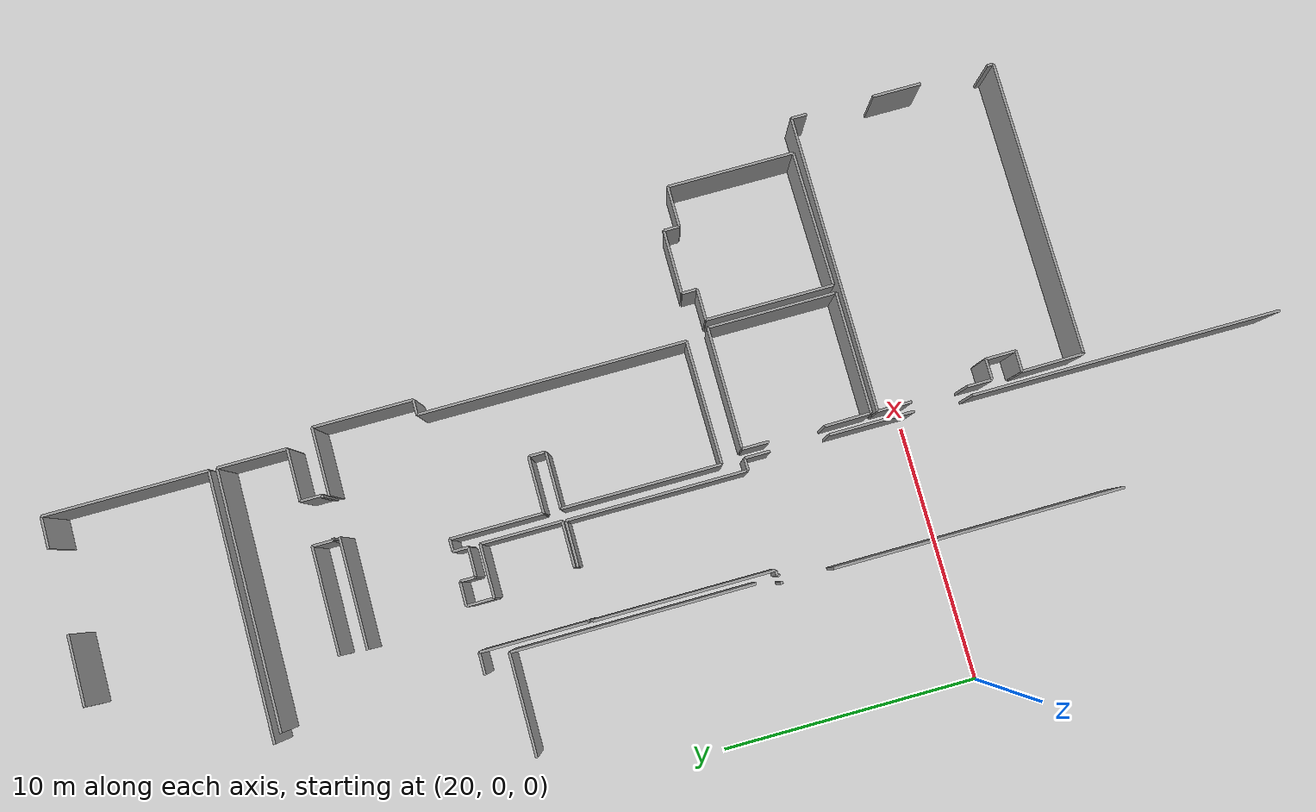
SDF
<sdf version="1.6">
 <world name="default">
  <model name="ground_plane">
   <static>1</static>
   <link name="link">
    <collision name="collision">
     <geometry><plane><normal>0 0 1</normal><size>100 100</size></plane></geometry>
     <surface><friction><ode><mu>100</mu><mu2>50</mu2></ode></friction></surface>
    </collision>
    <visual name="visual">
     <cast_shadows>0</cast_shadows>
     <geometry><plane><normal>0 0 1</normal><size>100 100</size></plane></geometry>
     <material>
      <script><uri>file://media/materials/scripts/gazebo.material</uri><name>Gazebo/Grey</name></script>
     </material>
    </visual>
   </link>
  </model>
  <model name="50052749">
   <static>1</static>
   <link name="Wall_98">
    <collision name="Wall_98_Collision">
     <geometry><box><size>2.7464027956 0.1 2.5</size></box></geometry>
     <pose>1.3732013978 0 1.25 0 0 0</pose>
    </collision>
    <visual name="Wall_98_Visual">
     <pose>1.3732013978 0 1.25 0 0 0</pose>
     <geometry><box><size>2.7464027956 0.1 2.5</size></box></geometry>
     <material>
      <script><uri>file://media/materials/scripts/gazebo.material</uri><name>Gazebo/Grey</name></script>
      <ambient>1 1 1 1</ambient>
     </material>
    </visual>
    <pose>70.475535967 -0.0281487267139 0 0 0 0.0</pose>
   </link>
   <link name="Wall_99">
    <collision name="Wall_99_Collision">
     <geometry><box><size>1.25528105616 0.1 2.5</size></box></geometry>
     <pose>0.62764052808 0 1.25 0 0 0</pose>
    </collision>
    <visual name="Wall_99_Visual">
     <pose>0.62764052808 0 1.25 0 0 0</pose>
     <geometry><box><size>1.25528105616 0.1 2.5</size></box></geometry>
     <material>
      <script><uri>file://media/materials/scripts/gazebo.material</uri><name>Gazebo/Grey</name></script>
      <ambient>1 1 1 1</ambient>
     </material>
    </visual>
    <pose>76.4780617446 -0.0281487267139 0 0 0 0.0</pose>
   </link>
   <link name="Wall_100">
    <collision name="Wall_100_Collision">
     <geometry><box><size>6.40586406447 0.1 2.5</size></box></geometry>
     <pose>3.20293203224 0 1.25 0 0 0</pose>
    </collision>
    <visual name="Wall_100_Visual">
     <pose>3.20293203224 0 1.25 0 0 0</pose>
     <geometry><box><size>6.40586406447 0.1 2.5</size></box></geometry>
     <material>
      <script><uri>file://media/materials/scripts/gazebo.material</uri><name>Gazebo/Grey</name></script>
      <ambient>1 1 1 1</ambient>
     </material>
    </visual>
    <pose>77.7333428008 -0.0281487267139 0 0 0 -1.57079632679</pose>
   </link>
   <link name="Wall_101">
    <collision name="Wall_101_Collision">
     <geometry><box><size>10.4055191792 0.1 2.5</size></box></geometry>
     <pose>5.20275958959 0 1.25 0 0 0</pose>
    </collision>
    <visual name="Wall_101_Visual">
     <pose>5.20275958959 0 1.25 0 0 0</pose>
     <geometry><box><size>10.4055191792 0.1 2.5</size></box></geometry>
     <material>
      <script><uri>file://media/materials/scripts/gazebo.material</uri><name>Gazebo/Grey</name></script>
      <ambient>1 1 1 1</ambient>
     </material>
    </visual>
    <pose>77.7333428008 -6.43401279119 0 0 0 3.14159265359</pose>
   </link>
   <link name="Wall_111">
    <collision name="Wall_111_Collision">
     <geometry><box><size>4.17869116029 0.1 2.5</size></box></geometry>
     <pose>2.08934558014 0 1.25 0 0 0</pose>
    </collision>
    <visual name="Wall_111_Visual">
     <pose>2.08934558014 0 1.25 0 0 0</pose>
     <geometry><box><size>4.17869116029 0.1 2.5</size></box></geometry>
     <material>
      <script><uri>file://media/materials/scripts/gazebo.material</uri><name>Gazebo/Grey</name></script>
      <ambient>1 1 1 1</ambient>
     </material>
    </visual>
    <pose>69.7929927422 -9.48650129078 0 0 0 0.0</pose>
   </link>
   <link name="Wall_112">
    <collision name="Wall_112_Collision">
     <geometry><box><size>0.815171910107 0.1 2.5</size></box></geometry>
     <pose>0.407585955053 0 1.25 0 0 0</pose>
    </collision>
    <visual name="Wall_112_Visual">
     <pose>0.407585955053 0 1.25 0 0 0</pose>
     <geometry><box><size>0.815171910107 0.1 2.5</size></box></geometry>
     <material>
      <script><uri>file://media/materials/scripts/gazebo.material</uri><name>Gazebo/Grey</name></script>
      <ambient>1 1 1 1</ambient>
     </material>
    </visual>
    <pose>73.9716839025 -9.48650129078 0 0 0 -1.57079632679</pose>
   </link>
   <link name="Wall_113">
    <collision name="Wall_113_Collision">
     <geometry><box><size>0.0910395755882 0.1 2.5</size></box></geometry>
     <pose>0.0455197877941 0 1.25 0 0 0</pose>
    </collision>
    <visual name="Wall_113_Visual">
     <pose>0.0455197877941 0 1.25 0 0 0</pose>
     <geometry><box><size>0.0910395755882 0.1 2.5</size></box></geometry>
     <material>
      <script><uri>file://media/materials/scripts/gazebo.material</uri><name>Gazebo/Grey</name></script>
      <ambient>1 1 1 1</ambient>
     </material>
    </visual>
    <pose>73.9716839025 -10.3016732009 0 0 0 0.0</pose>
   </link>
   <link name="Wall_114">
    <collision name="Wall_114_Collision">
     <geometry><box><size>0.0958578261068 0.1 2.5</size></box></geometry>
     <pose>0.0479289130534 0 1.25 0 0 0</pose>
    </collision>
    <visual name="Wall_114_Visual">
     <pose>0.0479289130534 0 1.25 0 0 0</pose>
     <geometry><box><size>0.0958578261068 0.1 2.5</size></box></geometry>
     <material>
      <script><uri>file://media/materials/scripts/gazebo.material</uri><name>Gazebo/Grey</name></script>
      <ambient>1 1 1 1</ambient>
     </material>
    </visual>
    <pose>75.617877231 -10.3016732009 0 0 0 0.0</pose>
   </link>
   <link name="Wall_115">
    <collision name="Wall_115_Collision">
     <geometry><box><size>0.842940248622 0.1 2.5</size></box></geometry>
     <pose>0.421470124311 0 1.25 0 0 0</pose>
    </collision>
    <visual name="Wall_115_Visual">
     <pose>0.421470124311 0 1.25 0 0 0</pose>
     <geometry><box><size>0.842940248622 0.1 2.5</size></box></geometry>
     <material>
      <script><uri>file://media/materials/scripts/gazebo.material</uri><name>Gazebo/Grey</name></script>
      <ambient>1 1 1 1</ambient>
     </material>
    </visual>
    <pose>75.7137350571 -10.3016732009 0 0 0 1.57079632679</pose>
   </link>
   <link name="Wall_116">
    <collision name="Wall_116_Collision">
     <geometry><box><size>2.03254094245 0.1 2.5</size></box></geometry>
     <pose>1.01627047122 0 1.25 0 0 0</pose>
    </collision>
    <visual name="Wall_116_Visual">
     <pose>1.01627047122 0 1.25 0 0 0</pose>
     <geometry><box><size>2.03254094245 0.1 2.5</size></box></geometry>
     <material>
      <script><uri>file://media/materials/scripts/gazebo.material</uri><name>Gazebo/Grey</name></script>
      <ambient>1 1 1 1</ambient>
     </material>
    </visual>
    <pose>75.7137350571 -9.45873295227 0 0 0 0.0</pose>
   </link>
   <link name="Wall_117">
    <collision name="Wall_117_Collision">
     <geometry><box><size>2.70798358752 0.1 2.5</size></box></geometry>
     <pose>1.35399179376 0 1.25 0 0 0</pose>
    </collision>
    <visual name="Wall_117_Visual">
     <pose>1.35399179376 0 1.25 0 0 0</pose>
     <geometry><box><size>2.70798358752 0.1 2.5</size></box></geometry>
     <material>
      <script><uri>file://media/materials/scripts/gazebo.material</uri><name>Gazebo/Grey</name></script>
      <ambient>1 1 1 1</ambient>
     </material>
    </visual>
    <pose>77.7462759995 -9.45873295227 0 0 0 1.57079632679</pose>
   </link>
   <link name="Wall_118">
    <collision name="Wall_118_Collision">
     <geometry><box><size>10.0944884286 0.1 2.5</size></box></geometry>
     <pose>5.0472442143 0 1.25 0 0 0</pose>
    </collision>
    <visual name="Wall_118_Visual">
     <pose>5.0472442143 0 1.25 0 0 0</pose>
     <geometry><box><size>10.0944884286 0.1 2.5</size></box></geometry>
     <material>
      <script><uri>file://media/materials/scripts/gazebo.material</uri><name>Gazebo/Grey</name></script>
      <ambient>1 1 1 1</ambient>
     </material>
    </visual>
    <pose>77.7462759995 -6.75074936475 0 0 0 3.14159265359</pose>
   </link>
   <link name="Wall_139">
    <collision name="Wall_139_Collision">
     <geometry><box><size>6.22708161102 0.1 2.5</size></box></geometry>
     <pose>3.11354080551 0 1.25 0 0 0</pose>
    </collision>
    <visual name="Wall_139_Visual">
     <pose>3.11354080551 0 1.25 0 0 0</pose>
     <geometry><box><size>6.22708161102 0.1 2.5</size></box></geometry>
     <material>
      <script><uri>file://media/materials/scripts/gazebo.material</uri><name>Gazebo/Grey</name></script>
      <ambient>1 1 1 1</ambient>
     </material>
    </visual>
    <pose>72.8639934675 -24.975147971 0 0 0 1.57079632679</pose>
   </link>
   <link name="Wall_140">
    <collision name="Wall_140_Collision">
     <geometry><box><size>2.19927776961 0.1 2.5</size></box></geometry>
     <pose>1.0996388848 0 1.25 0 0 0</pose>
    </collision>
    <visual name="Wall_140_Visual">
     <pose>1.0996388848 0 1.25 0 0 0</pose>
     <geometry><box><size>2.19927776961 0.1 2.5</size></box></geometry>
     <material>
      <script><uri>file://media/materials/scripts/gazebo.material</uri><name>Gazebo/Grey</name></script>
      <ambient>1 1 1 1</ambient>
     </material>
    </visual>
    <pose>72.8639934675 -18.74806636 0 0 0 0.0</pose>
   </link>
   <link name="Wall_141">
    <collision name="Wall_141_Collision">
     <geometry><box><size>0.661495077777 0.1 2.5</size></box></geometry>
     <pose>0.330747538888 0 1.25 0 0 0</pose>
    </collision>
    <visual name="Wall_141_Visual">
     <pose>0.330747538888 0 1.25 0 0 0</pose>
     <geometry><box><size>0.661495077777 0.1 2.5</size></box></geometry>
     <material>
      <script><uri>file://media/materials/scripts/gazebo.material</uri><name>Gazebo/Grey</name></script>
      <ambient>1 1 1 1</ambient>
     </material>
    </visual>
    <pose>75.0632712371 -18.74806636 0 0 0 1.57079632679</pose>
   </link>
   <link name="Wall_142">
    <collision name="Wall_142_Collision">
     <geometry><box><size>2.19420592696 0.1 2.5</size></box></geometry>
     <pose>1.09710296348 0 1.25 0 0 0</pose>
    </collision>
    <visual name="Wall_142_Visual">
     <pose>1.09710296348 0 1.25 0 0 0</pose>
     <geometry><box><size>2.19420592696 0.1 2.5</size></box></geometry>
     <material>
      <script><uri>file://media/materials/scripts/gazebo.material</uri><name>Gazebo/Grey</name></script>
      <ambient>1 1 1 1</ambient>
     </material>
    </visual>
    <pose>75.0632712371 -18.0865712822 0 0 0 3.14159265359</pose>
   </link>
   <link name="Wall_143">
    <collision name="Wall_143_Collision">
     <geometry><box><size>3.60734808563 0.1 2.5</size></box></geometry>
     <pose>1.80367404282 0 1.25 0 0 0</pose>
    </collision>
    <visual name="Wall_143_Visual">
     <pose>1.80367404282 0 1.25 0 0 0</pose>
     <geometry><box><size>3.60734808563 0.1 2.5</size></box></geometry>
     <material>
      <script><uri>file://media/materials/scripts/gazebo.material</uri><name>Gazebo/Grey</name></script>
      <ambient>1 1 1 1</ambient>
     </material>
    </visual>
    <pose>72.8690653101 -18.0865712822 0 0 0 1.57079632679</pose>
   </link>
   <link name="Wall_144">
    <collision name="Wall_144_Collision">
     <geometry><box><size>0.473456511485 0.1 2.5</size></box></geometry>
     <pose>0.236728255743 0 1.25 0 0 0</pose>
    </collision>
    <visual name="Wall_144_Visual">
     <pose>0.236728255743 0 1.25 0 0 0</pose>
     <geometry><box><size>0.473456511485 0.1 2.5</size></box></geometry>
     <material>
      <script><uri>file://media/materials/scripts/gazebo.material</uri><name>Gazebo/Grey</name></script>
      <ambient>1 1 1 1</ambient>
     </material>
    </visual>
    <pose>72.8690653101 -14.4792231966 0 0 0 3.14159265359</pose>
   </link>
   <link name="Wall_145">
    <collision name="Wall_145_Collision">
     <geometry><box><size>0.583642293082 0.1 2.5</size></box></geometry>
     <pose>0.291821146541 0 1.25 0 0 0</pose>
    </collision>
    <visual name="Wall_145_Visual">
     <pose>0.291821146541 0 1.25 0 0 0</pose>
     <geometry><box><size>0.583642293082 0.1 2.5</size></box></geometry>
     <material>
      <script><uri>file://media/materials/scripts/gazebo.material</uri><name>Gazebo/Grey</name></script>
      <ambient>1 1 1 1</ambient>
     </material>
    </visual>
    <pose>72.3956087986 -14.4792231966 0 0 0 -1.57079632679</pose>
   </link>
   <link name="Wall_146">
    <collision name="Wall_146_Collision">
     <geometry><box><size>1.14217896504 0.1 2.5</size></box></geometry>
     <pose>0.57108948252 0 1.25 0 0 0</pose>
    </collision>
    <visual name="Wall_146_Visual">
     <pose>0.57108948252 0 1.25 0 0 0</pose>
     <geometry><box><size>1.14217896504 0.1 2.5</size></box></geometry>
     <material>
      <script><uri>file://media/materials/scripts/gazebo.material</uri><name>Gazebo/Grey</name></script>
      <ambient>1 1 1 1</ambient>
     </material>
    </visual>
    <pose>72.3956087986 -15.0628654897 0 0 0 3.14159265359</pose>
   </link>
   <link name="Wall_147">
    <collision name="Wall_147_Collision">
     <geometry><box><size>0.608621118138 0.1 2.5</size></box></geometry>
     <pose>0.304310559069 0 1.25 0 0 0</pose>
    </collision>
    <visual name="Wall_147_Visual">
     <pose>0.304310559069 0 1.25 0 0 0</pose>
     <geometry><box><size>0.608621118138 0.1 2.5</size></box></geometry>
     <material>
      <script><uri>file://media/materials/scripts/gazebo.material</uri><name>Gazebo/Grey</name></script>
      <ambient>1 1 1 1</ambient>
     </material>
    </visual>
    <pose>71.2534298336 -15.0628654897 0 0 0 1.57079632679</pose>
   </link>
   <link name="Wall_148">
    <collision name="Wall_148_Collision">
     <geometry><box><size>0.933726232077 0.1 2.5</size></box></geometry>
     <pose>0.466863116039 0 1.25 0 0 0</pose>
    </collision>
    <visual name="Wall_148_Visual">
     <pose>0.466863116039 0 1.25 0 0 0</pose>
     <geometry><box><size>0.933726232077 0.1 2.5</size></box></geometry>
     <material>
      <script><uri>file://media/materials/scripts/gazebo.material</uri><name>Gazebo/Grey</name></script>
      <ambient>1 1 1 1</ambient>
     </material>
    </visual>
    <pose>71.2534298336 -14.4542443715 0 0 0 3.14159265359</pose>
   </link>
   <link name="Wall_149">
    <collision name="Wall_149_Collision">
     <geometry><box><size>1.0671156938 0.1 2.5</size></box></geometry>
     <pose>0.533557846901 0 1.25 0 0 0</pose>
    </collision>
    <visual name="Wall_149_Visual">
     <pose>0.533557846901 0 1.25 0 0 0</pose>
     <geometry><box><size>1.0671156938 0.1 2.5</size></box></geometry>
     <material>
      <script><uri>file://media/materials/scripts/gazebo.material</uri><name>Gazebo/Grey</name></script>
      <ambient>1 1 1 1</ambient>
     </material>
    </visual>
    <pose>70.3197036015 -14.4542443715 0 0 0 -1.57079632679</pose>
   </link>
   <link name="Wall_150">
    <collision name="Wall_150_Collision">
     <geometry><box><size>2.07590519712 0.1 2.5</size></box></geometry>
     <pose>1.03795259856 0 1.25 0 0 0</pose>
    </collision>
    <visual name="Wall_150_Visual">
     <pose>1.03795259856 0 1.25 0 0 0</pose>
     <geometry><box><size>2.07590519712 0.1 2.5</size></box></geometry>
     <material>
      <script><uri>file://media/materials/scripts/gazebo.material</uri><name>Gazebo/Grey</name></script>
      <ambient>1 1 1 1</ambient>
     </material>
    </visual>
    <pose>70.3197036015 -15.5213600653 0 0 0 0.0</pose>
   </link>
   <link name="Wall_151">
    <collision name="Wall_151_Collision">
     <geometry><box><size>3.15519331328 0.1 2.5</size></box></geometry>
     <pose>1.57759665664 0 1.25 0 0 0</pose>
    </collision>
    <visual name="Wall_151_Visual">
     <pose>1.57759665664 0 1.25 0 0 0</pose>
     <geometry><box><size>3.15519331328 0.1 2.5</size></box></geometry>
     <material>
      <script><uri>file://media/materials/scripts/gazebo.material</uri><name>Gazebo/Grey</name></script>
      <ambient>1 1 1 1</ambient>
     </material>
    </visual>
    <pose>72.3956087986 -15.5213600653 0 0 0 -1.57079632679</pose>
   </link>
   <link name="Wall_152">
    <collision name="Wall_152_Collision">
     <geometry><box><size>1.78845851486 0.1 2.5</size></box></geometry>
     <pose>0.894229257432 0 1.25 0 0 0</pose>
    </collision>
    <visual name="Wall_152_Visual">
     <pose>0.894229257432 0 1.25 0 0 0</pose>
     <geometry><box><size>1.78845851486 0.1 2.5</size></box></geometry>
     <material>
      <script><uri>file://media/materials/scripts/gazebo.material</uri><name>Gazebo/Grey</name></script>
      <ambient>1 1 1 1</ambient>
     </material>
    </visual>
    <pose>72.3956087986 -18.6765533786 0 0 0 3.14159265359</pose>
   </link>
   <link name="Wall_153">
    <collision name="Wall_153_Collision">
     <geometry><box><size>0.0687234679231 0.1 2.5</size></box></geometry>
     <pose>0.0343617339616 0 1.25 0 0 0</pose>
    </collision>
    <visual name="Wall_153_Visual">
     <pose>0.0343617339616 0 1.25 0 0 0</pose>
     <geometry><box><size>0.0687234679231 0.1 2.5</size></box></geometry>
     <material>
      <script><uri>file://media/materials/scripts/gazebo.material</uri><name>Gazebo/Grey</name></script>
      <ambient>1 1 1 1</ambient>
     </material>
    </visual>
    <pose>68.6207631094 -18.6765533786 0 0 0 3.14159265359</pose>
   </link>
   <link name="Wall_154">
    <collision name="Wall_154_Collision">
     <geometry><box><size>4.19060999052 0.1 2.5</size></box></geometry>
     <pose>2.09530499526 0 1.25 0 0 0</pose>
    </collision>
    <visual name="Wall_154_Visual">
     <pose>2.09530499526 0 1.25 0 0 0</pose>
     <geometry><box><size>4.19060999052 0.1 2.5</size></box></geometry>
     <material>
      <script><uri>file://media/materials/scripts/gazebo.material</uri><name>Gazebo/Grey</name></script>
      <ambient>1 1 1 1</ambient>
     </material>
    </visual>
    <pose>68.5520396415 -18.6765533786 0 0 0 1.57079632679</pose>
   </link>
   <link name="Wall_155">
    <collision name="Wall_155_Collision">
     <geometry><box><size>0.854098302454 0.1 2.5</size></box></geometry>
     <pose>0.427049151227 0 1.25 0 0 0</pose>
    </collision>
    <visual name="Wall_155_Visual">
     <pose>0.427049151227 0 1.25 0 0 0</pose>
     <geometry><box><size>0.854098302454 0.1 2.5</size></box></geometry>
     <material>
      <script><uri>file://media/materials/scripts/gazebo.material</uri><name>Gazebo/Grey</name></script>
      <ambient>1 1 1 1</ambient>
     </material>
    </visual>
    <pose>68.5520396415 -14.4859433881 0 0 0 3.14159265359</pose>
   </link>
   <link name="Wall_159">
    <collision name="Wall_159_Collision">
     <geometry><box><size>4.30054217998 0.1 2.5</size></box></geometry>
     <pose>2.15027108999 0 1.25 0 0 0</pose>
    </collision>
    <visual name="Wall_159_Visual">
     <pose>2.15027108999 0 1.25 0 0 0</pose>
     <geometry><box><size>4.30054217998 0.1 2.5</size></box></geometry>
     <material>
      <script><uri>file://media/materials/scripts/gazebo.material</uri><name>Gazebo/Grey</name></script>
      <ambient>1 1 1 1</ambient>
     </material>
    </visual>
    <pose>69.737202473 -10.5443608717 0 0 0 0.0</pose>
   </link>
   <link name="Wall_160">
    <collision name="Wall_160_Collision">
     <geometry><box><size>2.66170302333 0.1 2.5</size></box></geometry>
     <pose>1.33085151166 0 1.25 0 0 0</pose>
    </collision>
    <visual name="Wall_160_Visual">
     <pose>1.33085151166 0 1.25 0 0 0</pose>
     <geometry><box><size>2.66170302333 0.1 2.5</size></box></geometry>
     <material>
      <script><uri>file://media/materials/scripts/gazebo.material</uri><name>Gazebo/Grey</name></script>
      <ambient>1 1 1 1</ambient>
     </material>
    </visual>
    <pose>75.6202863562 -10.5443608717 0 0 0 0.0</pose>
   </link>
   <link name="Wall_161">
    <collision name="Wall_161_Collision">
     <geometry><box><size>3.91292660536 0.1 2.5</size></box></geometry>
     <pose>1.95646330268 0 1.25 0 0 0</pose>
    </collision>
    <visual name="Wall_161_Visual">
     <pose>1.95646330268 0 1.25 0 0 0</pose>
     <geometry><box><size>3.91292660536 0.1 2.5</size></box></geometry>
     <material>
      <script><uri>file://media/materials/scripts/gazebo.material</uri><name>Gazebo/Grey</name></script>
      <ambient>1 1 1 1</ambient>
     </material>
    </visual>
    <pose>78.2819893796 -10.5443608717 0 0 0 -1.57079632679</pose>
   </link>
   <link name="Wall_162">
    <collision name="Wall_162_Collision">
     <geometry><box><size>0.583388700949 0.1 2.5</size></box></geometry>
     <pose>0.291694350474 0 1.25 0 0 0</pose>
    </collision>
    <visual name="Wall_162_Visual">
     <pose>0.291694350474 0 1.25 0 0 0</pose>
     <geometry><box><size>0.583388700949 0.1 2.5</size></box></geometry>
     <material>
      <script><uri>file://media/materials/scripts/gazebo.material</uri><name>Gazebo/Grey</name></script>
      <ambient>1 1 1 1</ambient>
     </material>
    </visual>
    <pose>78.2819893796 -14.4572874771 0 0 0 3.14159265359</pose>
   </link>
   <link name="Wall_163">
    <collision name="Wall_163_Collision">
     <geometry><box><size>10.4854007009 0.1 2.5</size></box></geometry>
     <pose>5.24270035046 0 1.25 0 0 0</pose>
    </collision>
    <visual name="Wall_163_Visual">
     <pose>5.24270035046 0 1.25 0 0 0</pose>
     <geometry><box><size>10.4854007009 0.1 2.5</size></box></geometry>
     <material>
      <script><uri>file://media/materials/scripts/gazebo.material</uri><name>Gazebo/Grey</name></script>
      <ambient>1 1 1 1</ambient>
     </material>
    </visual>
    <pose>77.6986006786 -14.4572874771 0 0 0 -1.57079632679</pose>
   </link>
   <link name="Wall_164">
    <collision name="Wall_164_Collision">
     <geometry><box><size>4.83471617825 0.1 2.5</size></box></geometry>
     <pose>2.41735808912 0 1.25 0 0 0</pose>
    </collision>
    <visual name="Wall_164_Visual">
     <pose>2.41735808912 0 1.25 0 0 0</pose>
     <geometry><box><size>4.83471617825 0.1 2.5</size></box></geometry>
     <material>
      <script><uri>file://media/materials/scripts/gazebo.material</uri><name>Gazebo/Grey</name></script>
      <ambient>1 1 1 1</ambient>
     </material>
    </visual>
    <pose>77.6986006786 -24.942688178 0 0 0 -3.1348787048</pose>
   </link>
   <link name="Wall_166">
    <collision name="Wall_166_Collision">
     <geometry><box><size>9.45607023488 0.1 2.5</size></box></geometry>
     <pose>4.72803511744 0 1.25 0 0 0</pose>
    </collision>
    <visual name="Wall_166_Visual">
     <pose>4.72803511744 0 1.25 0 0 0</pose>
     <geometry><box><size>9.45607023488 0.1 2.5</size></box></geometry>
     <material>
      <script><uri>file://media/materials/scripts/gazebo.material</uri><name>Gazebo/Grey</name></script>
      <ambient>1 1 1 1</ambient>
     </material>
    </visual>
    <pose>68.25457607 -25.0107776656 0 0 0 1.57079632679</pose>
   </link>
   <link name="Wall_167">
    <collision name="Wall_167_Collision">
     <geometry><box><size>3.9458935826 0.1 2.5</size></box></geometry>
     <pose>1.9729467913 0 1.25 0 0 0</pose>
    </collision>
    <visual name="Wall_167_Visual">
     <pose>1.9729467913 0 1.25 0 0 0</pose>
     <geometry><box><size>3.9458935826 0.1 2.5</size></box></geometry>
     <material>
      <script><uri>file://media/materials/scripts/gazebo.material</uri><name>Gazebo/Grey</name></script>
      <ambient>1 1 1 1</ambient>
     </material>
    </visual>
    <pose>68.25457607 -15.5547074308 0 0 0 3.14159265359</pose>
   </link>
   <link name="Wall_384">
    <collision name="Wall_384_Collision">
     <geometry><box><size>11.7089827405 0.1 2.5</size></box></geometry>
     <pose>5.85449137026 0 1.25 0 0 0</pose>
    </collision>
    <visual name="Wall_384_Visual">
     <pose>5.85449137026 0 1.25 0 0 0</pose>
     <geometry><box><size>11.7089827405 0.1 2.5</size></box></geometry>
     <material>
      <script><uri>file://media/materials/scripts/gazebo.material</uri><name>Gazebo/Grey</name></script>
      <ambient>1 1 1 1</ambient>
     </material>
    </visual>
    <pose>73.2576952533 -39.250483093 0 0 0 0.0</pose>
   </link>
   <link name="Wall_385">
    <collision name="Wall_385_Collision">
     <geometry><box><size>0.247886309575 0.1 2.5</size></box></geometry>
     <pose>0.123943154788 0 1.25 0 0 0</pose>
    </collision>
    <visual name="Wall_385_Visual">
     <pose>0.123943154788 0 1.25 0 0 0</pose>
     <geometry><box><size>0.247886309575 0.1 2.5</size></box></geometry>
     <material>
      <script><uri>file://media/materials/scripts/gazebo.material</uri><name>Gazebo/Grey</name></script>
      <ambient>1 1 1 1</ambient>
     </material>
    </visual>
    <pose>84.9666779938 -39.250483093 0 0 0 1.57079632679</pose>
   </link>
   <link name="Wall_386">
    <collision name="Wall_386_Collision">
     <geometry><box><size>1.91462060081 0.1 2.5</size></box></geometry>
     <pose>0.957310300405 0 1.25 0 0 0</pose>
    </collision>
    <visual name="Wall_386_Visual">
     <pose>0.957310300405 0 1.25 0 0 0</pose>
     <geometry><box><size>1.91462060081 0.1 2.5</size></box></geometry>
     <material>
      <script><uri>file://media/materials/scripts/gazebo.material</uri><name>Gazebo/Grey</name></script>
      <ambient>1 1 1 1</ambient>
     </material>
    </visual>
    <pose>84.9666779938 -36.321493962 0 0 0 1.57079632679</pose>
   </link>
   <link name="Wall_387">
    <collision name="Wall_387_Collision">
     <geometry><box><size>0.608621118138 0.1 2.5</size></box></geometry>
     <pose>0.304310559069 0 1.25 0 0 0</pose>
    </collision>
    <visual name="Wall_387_Visual">
     <pose>0.304310559069 0 1.25 0 0 0</pose>
     <geometry><box><size>0.608621118138 0.1 2.5</size></box></geometry>
     <material>
      <script><uri>file://media/materials/scripts/gazebo.material</uri><name>Gazebo/Grey</name></script>
      <ambient>1 1 1 1</ambient>
     </material>
    </visual>
    <pose>84.9666779938 -31.7568355759 0 0 0 1.57079632679</pose>
   </link>
   <link name="Wall_388">
    <collision name="Wall_388_Collision">
     <geometry><box><size>11.7371314672 0.1 2.5</size></box></geometry>
     <pose>5.86856573362 0 1.25 0 0 0</pose>
    </collision>
    <visual name="Wall_388_Visual">
     <pose>5.86856573362 0 1.25 0 0 0</pose>
     <geometry><box><size>11.7371314672 0.1 2.5</size></box></geometry>
     <material>
      <script><uri>file://media/materials/scripts/gazebo.material</uri><name>Gazebo/Grey</name></script>
      <ambient>1 1 1 1</ambient>
     </material>
    </visual>
    <pose>84.9666779938 -31.1482144578 0 0 0 3.14159265359</pose>
   </link>
   <link name="Wall_389">
    <collision name="Wall_389_Collision">
     <geometry><box><size>1.34036121663 0.1 2.5</size></box></geometry>
     <pose>0.670180608317 0 1.25 0 0 0</pose>
    </collision>
    <visual name="Wall_389_Visual">
     <pose>0.670180608317 0 1.25 0 0 0</pose>
     <geometry><box><size>1.34036121663 0.1 2.5</size></box></geometry>
     <material>
      <script><uri>file://media/materials/scripts/gazebo.material</uri><name>Gazebo/Grey</name></script>
      <ambient>1 1 1 1</ambient>
     </material>
    </visual>
    <pose>73.2295465265 -31.1482144578 0 0 0 -1.57079632679</pose>
   </link>
   <link name="Wall_390">
    <collision name="Wall_390_Collision">
     <geometry><box><size>0.975188545751 0.1 2.5</size></box></geometry>
     <pose>0.487594272875 0 1.25 0 0 0</pose>
    </collision>
    <visual name="Wall_390_Visual">
     <pose>0.487594272875 0 1.25 0 0 0</pose>
     <geometry><box><size>0.975188545751 0.1 2.5</size></box></geometry>
     <material>
      <script><uri>file://media/materials/scripts/gazebo.material</uri><name>Gazebo/Grey</name></script>
      <ambient>1 1 1 1</ambient>
     </material>
    </visual>
    <pose>73.2295465265 -34.6635085993 0 0 0 -1.57079632679</pose>
   </link>
   <link name="Wall_391">
    <collision name="Wall_391_Collision">
     <geometry><box><size>0.808451718594 0.1 2.5</size></box></geometry>
     <pose>0.404225859297 0 1.25 0 0 0</pose>
    </collision>
    <visual name="Wall_391_Visual">
     <pose>0.404225859297 0 1.25 0 0 0</pose>
     <geometry><box><size>0.808451718594 0.1 2.5</size></box></geometry>
     <material>
      <script><uri>file://media/materials/scripts/gazebo.material</uri><name>Gazebo/Grey</name></script>
      <ambient>1 1 1 1</ambient>
     </material>
    </visual>
    <pose>73.2295465265 -35.6386971451 0 0 0 0.0</pose>
   </link>
   <link name="Wall_392">
    <collision name="Wall_392_Collision">
     <geometry><box><size>1.17552633047 0.1 2.5</size></box></geometry>
     <pose>0.587763165236 0 1.25 0 0 0</pose>
    </collision>
    <visual name="Wall_392_Visual">
     <pose>0.587763165236 0 1.25 0 0 0</pose>
     <geometry><box><size>1.17552633047 0.1 2.5</size></box></geometry>
     <material>
      <script><uri>file://media/materials/scripts/gazebo.material</uri><name>Gazebo/Grey</name></script>
      <ambient>1 1 1 1</ambient>
     </material>
    </visual>
    <pose>74.0379982451 -35.6386971451 0 0 0 -1.57079632679</pose>
   </link>
   <link name="Wall_393">
    <collision name="Wall_393_Collision">
     <geometry><box><size>0.808705310726 0.1 2.5</size></box></geometry>
     <pose>0.404352655363 0 1.25 0 0 0</pose>
    </collision>
    <visual name="Wall_393_Visual">
     <pose>0.404352655363 0 1.25 0 0 0</pose>
     <geometry><box><size>0.808705310726 0.1 2.5</size></box></geometry>
     <material>
      <script><uri>file://media/materials/scripts/gazebo.material</uri><name>Gazebo/Grey</name></script>
      <ambient>1 1 1 1</ambient>
     </material>
    </visual>
    <pose>74.0379982451 -36.8142234755 0 0 0 3.14159265359</pose>
   </link>
   <link name="Wall_394">
    <collision name="Wall_394_Collision">
     <geometry><box><size>2.43642517133 0.1 2.5</size></box></geometry>
     <pose>1.21821258566 0 1.25 0 0 0</pose>
    </collision>
    <visual name="Wall_394_Visual">
     <pose>1.21821258566 0 1.25 0 0 0</pose>
     <geometry><box><size>2.43642517133 0.1 2.5</size></box></geometry>
     <material>
      <script><uri>file://media/materials/scripts/gazebo.material</uri><name>Gazebo/Grey</name></script>
      <ambient>1 1 1 1</ambient>
     </material>
    </visual>
    <pose>73.2292929344 -36.8142234755 0 0 0 -1.559138689</pose>
   </link>
   <link name="Wall_398">
    <collision name="Wall_398_Collision">
     <geometry><box><size>0.103211997951 0.1 2.5</size></box></geometry>
     <pose>0.0516059989755 0 1.25 0 0 0</pose>
    </collision>
    <visual name="Wall_398_Visual">
     <pose>0.0516059989755 0 1.25 0 0 0</pose>
     <geometry><box><size>0.103211997951 0.1 2.5</size></box></geometry>
     <material>
      <script><uri>file://media/materials/scripts/gazebo.material</uri><name>Gazebo/Grey</name></script>
      <ambient>1 1 1 1</ambient>
     </material>
    </visual>
    <pose>68.329132157 -25.9375301141 0 0 0 1.57079632679</pose>
   </link>
   <link name="Wall_399">
    <collision name="Wall_399_Collision">
     <geometry><box><size>0.213144187415 0.1 2.5</size></box></geometry>
     <pose>0.106572093707 0 1.25 0 0 0</pose>
    </collision>
    <visual name="Wall_399_Visual">
     <pose>0.106572093707 0 1.25 0 0 0</pose>
     <geometry><box><size>0.213144187415 0.1 2.5</size></box></geometry>
     <material>
      <script><uri>file://media/materials/scripts/gazebo.material</uri><name>Gazebo/Grey</name></script>
      <ambient>1 1 1 1</ambient>
     </material>
    </visual>
    <pose>68.329132157 -25.8343181161 0 0 0 0.0</pose>
   </link>
   <link name="Wall_400">
    <collision name="Wall_400_Collision">
     <geometry><box><size>7.0276719735 0.1 2.5</size></box></geometry>
     <pose>3.51383598675 0 1.25 0 0 0</pose>
    </collision>
    <visual name="Wall_400_Visual">
     <pose>3.51383598675 0 1.25 0 0 0</pose>
     <geometry><box><size>7.0276719735 0.1 2.5</size></box></geometry>
     <material>
      <script><uri>file://media/materials/scripts/gazebo.material</uri><name>Gazebo/Grey</name></script>
      <ambient>1 1 1 1</ambient>
     </material>
    </visual>
    <pose>68.5422763444 -25.8343181161 0 0 0 1.57079632679</pose>
   </link>
   <link name="Wall_401">
    <collision name="Wall_401_Collision">
     <geometry><box><size>0.0670751190615 0.1 2.5</size></box></geometry>
     <pose>0.0335375595308 0 1.25 0 0 0</pose>
    </collision>
    <visual name="Wall_401_Visual">
     <pose>0.0335375595308 0 1.25 0 0 0</pose>
     <geometry><box><size>0.0670751190615 0.1 2.5</size></box></geometry>
     <material>
      <script><uri>file://media/materials/scripts/gazebo.material</uri><name>Gazebo/Grey</name></script>
      <ambient>1 1 1 1</ambient>
     </material>
    </visual>
    <pose>68.5422763444 -18.8066461426 0 0 0 0.0</pose>
   </link>
   <link name="Wall_402">
    <collision name="Wall_402_Collision">
     <geometry><box><size>1.78782453453 0.1 2.5</size></box></geometry>
     <pose>0.893912267266 0 1.25 0 0 0</pose>
    </collision>
    <visual name="Wall_402_Visual">
     <pose>0.893912267266 0 1.25 0 0 0</pose>
     <geometry><box><size>1.78782453453 0.1 2.5</size></box></geometry>
     <material>
      <script><uri>file://media/materials/scripts/gazebo.material</uri><name>Gazebo/Grey</name></script>
      <ambient>1 1 1 1</ambient>
     </material>
    </visual>
    <pose>70.5956118417 -18.8066461426 0 0 0 0.0</pose>
   </link>
   <link name="Wall_403">
    <collision name="Wall_403_Collision">
     <geometry><box><size>7.05303118676 0.1 2.5</size></box></geometry>
     <pose>3.52651559338 0 1.25 0 0 0</pose>
    </collision>
    <visual name="Wall_403_Visual">
     <pose>3.52651559338 0 1.25 0 0 0</pose>
     <geometry><box><size>7.05303118676 0.1 2.5</size></box></geometry>
     <material>
      <script><uri>file://media/materials/scripts/gazebo.material</uri><name>Gazebo/Grey</name></script>
      <ambient>1 1 1 1</ambient>
     </material>
    </visual>
    <pose>72.3834363763 -18.8066461426 0 0 0 -1.57079632679</pose>
   </link>
   <link name="Wall_404">
    <collision name="Wall_404_Collision">
     <geometry><box><size>0.474597676082 0.1 2.5</size></box></geometry>
     <pose>0.237298838041 0 1.25 0 0 0</pose>
    </collision>
    <visual name="Wall_404_Visual">
     <pose>0.237298838041 0 1.25 0 0 0</pose>
     <geometry><box><size>0.474597676082 0.1 2.5</size></box></geometry>
     <material>
      <script><uri>file://media/materials/scripts/gazebo.material</uri><name>Gazebo/Grey</name></script>
      <ambient>1 1 1 1</ambient>
     </material>
    </visual>
    <pose>72.3834363763 -25.8596773294 0 0 0 0.0</pose>
   </link>
   <link name="Wall_405">
    <collision name="Wall_405_Collision">
     <geometry><box><size>0.992306014698 0.1 2.5</size></box></geometry>
     <pose>0.496153007349 0 1.25 0 0 0</pose>
    </collision>
    <visual name="Wall_405_Visual">
     <pose>0.496153007349 0 1.25 0 0 0</pose>
     <geometry><box><size>0.992306014698 0.1 2.5</size></box></geometry>
     <material>
      <script><uri>file://media/materials/scripts/gazebo.material</uri><name>Gazebo/Grey</name></script>
      <ambient>1 1 1 1</ambient>
     </material>
    </visual>
    <pose>72.8580340524 -25.8596773294 0 0 0 -1.57079632679</pose>
   </link>
   <link name="Wall_406">
    <collision name="Wall_406_Collision">
     <geometry><box><size>3.31876023878 0.1 2.5</size></box></geometry>
     <pose>1.65938011939 0 1.25 0 0 0</pose>
    </collision>
    <visual name="Wall_406_Visual">
     <pose>1.65938011939 0 1.25 0 0 0</pose>
     <geometry><box><size>3.31876023878 0.1 2.5</size></box></geometry>
     <material>
      <script><uri>file://media/materials/scripts/gazebo.material</uri><name>Gazebo/Grey</name></script>
      <ambient>1 1 1 1</ambient>
     </material>
    </visual>
    <pose>72.8580340524 -29.1608129149 0 0 0 -1.57079632679</pose>
   </link>
   <link name="Wall_407">
    <collision name="Wall_407_Collision">
     <geometry><box><size>12.1473167416 0.1 2.5</size></box></geometry>
     <pose>6.07365837082 0 1.25 0 0 0</pose>
    </collision>
    <visual name="Wall_407_Visual">
     <pose>6.07365837082 0 1.25 0 0 0</pose>
     <geometry><box><size>12.1473167416 0.1 2.5</size></box></geometry>
     <material>
      <script><uri>file://media/materials/scripts/gazebo.material</uri><name>Gazebo/Grey</name></script>
      <ambient>1 1 1 1</ambient>
     </material>
    </visual>
    <pose>72.8580340524 -34.7464332267 0 0 0 -1.57079632679</pose>
   </link>
   <link name="Wall_414">
    <collision name="Wall_414_Collision">
     <geometry><box><size>0.104353162547 0.1 2.5</size></box></geometry>
     <pose>0.0521765812737 0 1.25 0 0 0</pose>
    </collision>
    <visual name="Wall_414_Visual">
     <pose>0.0521765812737 0 1.25 0 0 0</pose>
     <geometry><box><size>0.104353162547 0.1 2.5</size></box></geometry>
     <material>
      <script><uri>file://media/materials/scripts/gazebo.material</uri><name>Gazebo/Grey</name></script>
      <ambient>1 1 1 1</ambient>
     </material>
    </visual>
    <pose>68.036486836 -25.8694406265 0 0 0 -1.57079632679</pose>
   </link>
   <link name="Wall_415">
    <collision name="Wall_415_Collision">
     <geometry><box><size>11.2993046504 0.1 2.5</size></box></geometry>
     <pose>5.64965232519 0 1.25 0 0 0</pose>
    </collision>
    <visual name="Wall_415_Visual">
     <pose>5.64965232519 0 1.25 0 0 0</pose>
     <geometry><box><size>11.2993046504 0.1 2.5</size></box></geometry>
     <material>
      <script><uri>file://media/materials/scripts/gazebo.material</uri><name>Gazebo/Grey</name></script>
      <ambient>1 1 1 1</ambient>
     </material>
    </visual>
    <pose>68.036486836 -27.932666217 0 0 0 -1.57079632679</pose>
   </link>
   <link name="Wall_417">
    <collision name="Wall_417_Collision">
     <geometry><box><size>4.75485248546 0.1 2.5</size></box></geometry>
     <pose>2.37742624273 0 1.25 0 0 0</pose>
    </collision>
    <visual name="Wall_417_Visual">
     <pose>2.37742624273 0 1.25 0 0 0</pose>
     <geometry><box><size>4.75485248546 0.1 2.5</size></box></geometry>
     <material>
      <script><uri>file://media/materials/scripts/gazebo.material</uri><name>Gazebo/Grey</name></script>
      <ambient>1 1 1 1</ambient>
     </material>
    </visual>
    <pose>73.2329700203 -30.9073019319 0 0 0 0.0</pose>
   </link>
   <link name="Wall_418">
    <collision name="Wall_418_Collision">
     <geometry><box><size>5.0464834379 0.1 2.5</size></box></geometry>
     <pose>2.52324171895 0 1.25 0 0 0</pose>
    </collision>
    <visual name="Wall_418_Visual">
     <pose>2.52324171895 0 1.25 0 0 0</pose>
     <geometry><box><size>5.0464834379 0.1 2.5</size></box></geometry>
     <material>
      <script><uri>file://media/materials/scripts/gazebo.material</uri><name>Gazebo/Grey</name></script>
      <ambient>1 1 1 1</ambient>
     </material>
    </visual>
    <pose>77.9878225058 -30.9073019319 0 0 0 1.57079632679</pose>
   </link>
   <link name="Wall_419">
    <collision name="Wall_419_Collision">
     <geometry><box><size>4.77640781672 0.1 2.5</size></box></geometry>
     <pose>2.38820390836 0 1.25 0 0 0</pose>
    </collision>
    <visual name="Wall_419_Visual">
     <pose>2.38820390836 0 1.25 0 0 0</pose>
     <geometry><box><size>4.77640781672 0.1 2.5</size></box></geometry>
     <material>
      <script><uri>file://media/materials/scripts/gazebo.material</uri><name>Gazebo/Grey</name></script>
      <ambient>1 1 1 1</ambient>
     </material>
    </visual>
    <pose>77.9878225058 -25.860818494 0 0 0 3.14159265359</pose>
   </link>
   <link name="Wall_420">
    <collision name="Wall_420_Collision">
     <geometry><box><size>1.03769900643 0.1 2.5</size></box></geometry>
     <pose>0.518849503213 0 1.25 0 0 0</pose>
    </collision>
    <visual name="Wall_420_Visual">
     <pose>0.518849503213 0 1.25 0 0 0</pose>
     <geometry><box><size>1.03769900643 0.1 2.5</size></box></geometry>
     <material>
      <script><uri>file://media/materials/scripts/gazebo.material</uri><name>Gazebo/Grey</name></script>
      <ambient>1 1 1 1</ambient>
     </material>
    </visual>
    <pose>73.2114146891 -25.860818494 0 0 0 -1.57079632679</pose>
   </link>
   <link name="Wall_421">
    <collision name="Wall_421_Collision">
     <geometry><box><size>1.82928705474 0.1 2.5</size></box></geometry>
     <pose>0.914643527371 0 1.25 0 0 0</pose>
    </collision>
    <visual name="Wall_421_Visual">
     <pose>0.914643527371 0 1.25 0 0 0</pose>
     <geometry><box><size>1.82928705474 0.1 2.5</size></box></geometry>
     <material>
      <script><uri>file://media/materials/scripts/gazebo.material</uri><name>Gazebo/Grey</name></script>
      <ambient>1 1 1 1</ambient>
     </material>
    </visual>
    <pose>73.2114146891 -29.0781418797 0 0 0 -1.55901259385</pose>
   </link>
   <link name="Wall_431">
    <collision name="Wall_431_Collision">
     <geometry><box><size>5.02759082402 0.1 2.5</size></box></geometry>
     <pose>2.51379541201 0 1.25 0 0 0</pose>
    </collision>
    <visual name="Wall_431_Visual">
     <pose>2.51379541201 0 1.25 0 0 0</pose>
     <geometry><box><size>5.02759082402 0.1 2.5</size></box></geometry>
     <material>
      <script><uri>file://media/materials/scripts/gazebo.material</uri><name>Gazebo/Grey</name></script>
      <ambient>1 1 1 1</ambient>
     </material>
    </visual>
    <pose>78.2883291829 -30.8952563056 0 0 0 1.57079632679</pose>
   </link>
   <link name="Wall_432">
    <collision name="Wall_432_Collision">
     <geometry><box><size>1.21876378907 0.1 2.5</size></box></geometry>
     <pose>0.609381894536 0 1.25 0 0 0</pose>
    </collision>
    <visual name="Wall_432_Visual">
     <pose>0.609381894536 0 1.25 0 0 0</pose>
     <geometry><box><size>1.21876378907 0.1 2.5</size></box></geometry>
     <material>
      <script><uri>file://media/materials/scripts/gazebo.material</uri><name>Gazebo/Grey</name></script>
      <ambient>1 1 1 1</ambient>
     </material>
    </visual>
    <pose>78.2883291829 -25.8676654815 0 0 0 0.0</pose>
   </link>
   <link name="Wall_433">
    <collision name="Wall_433_Collision">
     <geometry><box><size>0.608621118138 0.1 2.5</size></box></geometry>
     <pose>0.304310559069 0 1.25 0 0 0</pose>
    </collision>
    <visual name="Wall_433_Visual">
     <pose>0.304310559069 0 1.25 0 0 0</pose>
     <geometry><box><size>0.608621118138 0.1 2.5</size></box></geometry>
     <material>
      <script><uri>file://media/materials/scripts/gazebo.material</uri><name>Gazebo/Grey</name></script>
      <ambient>1 1 1 1</ambient>
     </material>
    </visual>
    <pose>79.5070929719 -25.8676654815 0 0 0 1.57079632679</pose>
   </link>
   <link name="Wall_434">
    <collision name="Wall_434_Collision">
     <geometry><box><size>2.52438288355 0.1 2.5</size></box></geometry>
     <pose>1.26219144177 0 1.25 0 0 0</pose>
    </collision>
    <visual name="Wall_434_Visual">
     <pose>1.26219144177 0 1.25 0 0 0</pose>
     <geometry><box><size>2.52438288355 0.1 2.5</size></box></geometry>
     <material>
      <script><uri>file://media/materials/scripts/gazebo.material</uri><name>Gazebo/Grey</name></script>
      <ambient>1 1 1 1</ambient>
     </material>
    </visual>
    <pose>79.5070929719 -25.2590443634 0 0 0 0.0</pose>
   </link>
   <link name="Wall_435">
    <collision name="Wall_435_Collision">
     <geometry><box><size>0.600632965963 0.1 2.5</size></box></geometry>
     <pose>0.300316482981 0 1.25 0 0 0</pose>
    </collision>
    <visual name="Wall_435_Visual">
     <pose>0.300316482981 0 1.25 0 0 0</pose>
     <geometry><box><size>0.600632965963 0.1 2.5</size></box></geometry>
     <material>
      <script><uri>file://media/materials/scripts/gazebo.material</uri><name>Gazebo/Grey</name></script>
      <ambient>1 1 1 1</ambient>
     </material>
    </visual>
    <pose>82.0314758555 -25.2590443634 0 0 0 -1.57079632679</pose>
   </link>
   <link name="Wall_436">
    <collision name="Wall_436_Collision">
     <geometry><box><size>1.60790091648 0.1 2.5</size></box></geometry>
     <pose>0.803950458241 0 1.25 0 0 0</pose>
    </collision>
    <visual name="Wall_436_Visual">
     <pose>0.803950458241 0 1.25 0 0 0</pose>
     <geometry><box><size>1.60790091648 0.1 2.5</size></box></geometry>
     <material>
      <script><uri>file://media/materials/scripts/gazebo.material</uri><name>Gazebo/Grey</name></script>
      <ambient>1 1 1 1</ambient>
     </material>
    </visual>
    <pose>82.0314758555 -25.8596773294 0 0 0 0.0</pose>
   </link>
   <link name="Wall_437">
    <collision name="Wall_437_Collision">
     <geometry><box><size>4.98016909523 0.1 2.5</size></box></geometry>
     <pose>2.49008454762 0 1.25 0 0 0</pose>
    </collision>
    <visual name="Wall_437_Visual">
     <pose>2.49008454762 0 1.25 0 0 0</pose>
     <geometry><box><size>4.98016909523 0.1 2.5</size></box></geometry>
     <material>
      <script><uri>file://media/materials/scripts/gazebo.material</uri><name>Gazebo/Grey</name></script>
      <ambient>1 1 1 1</ambient>
     </material>
    </visual>
    <pose>83.639376772 -25.8596773294 0 0 0 -1.57079632679</pose>
   </link>
   <link name="Wall_438">
    <collision name="Wall_438_Collision">
     <geometry><box><size>5.35133446495 0.1 2.5</size></box></geometry>
     <pose>2.67566723247 0 1.25 0 0 0</pose>
    </collision>
    <visual name="Wall_438_Visual">
     <pose>2.67566723247 0 1.25 0 0 0</pose>
     <geometry><box><size>5.35133446495 0.1 2.5</size></box></geometry>
     <material>
      <script><uri>file://media/materials/scripts/gazebo.material</uri><name>Gazebo/Grey</name></script>
      <ambient>1 1 1 1</ambient>
     </material>
    </visual>
    <pose>83.639376772 -30.8398464246 0 0 0 -3.13123806419</pose>
   </link>
   <pose>-42.45 32.2703051221 0 0 0 0</pose>
  </model>
 </world>
</sdf>
